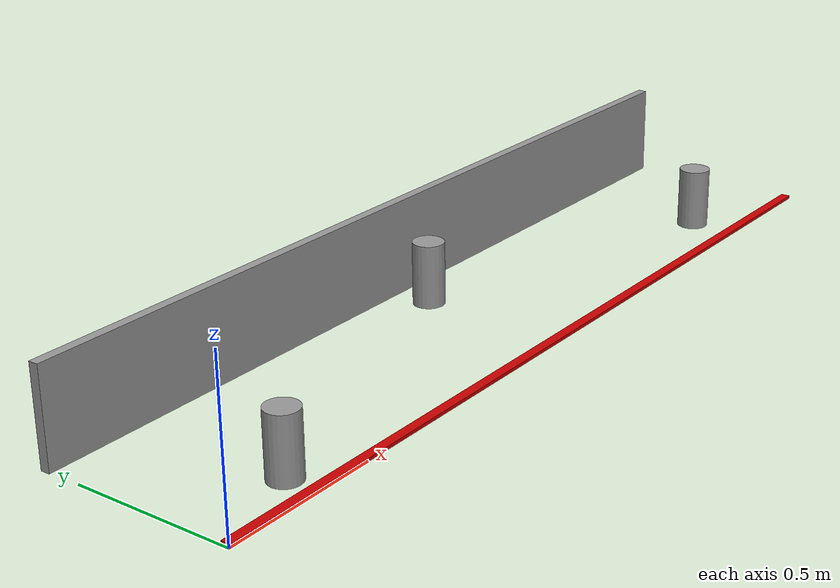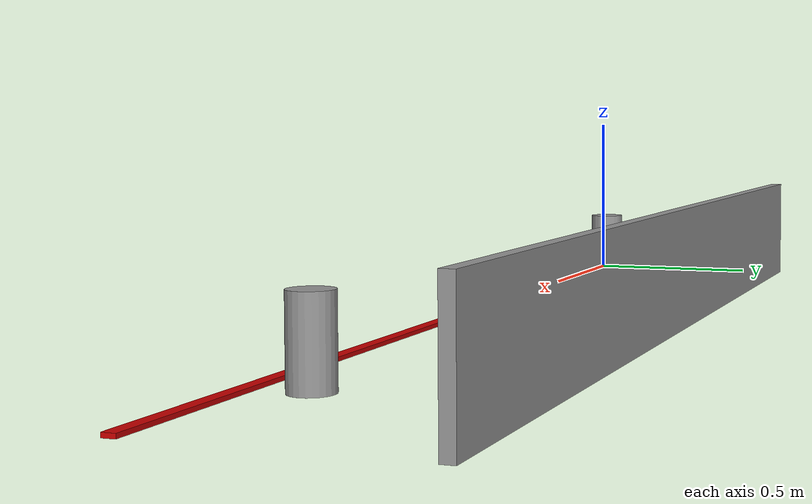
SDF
<?xml version='1.0'?>
<sdf version='1.7'>
  <model name='task1_world'>
    <model name='obstacle'>
      <link name='link_0'>
        <inertial>
          <mass>1</mass>
          <inertia>
            <ixx>0.145833</ixx>
            <ixy>0</ixy>
            <ixz>0</ixz>
            <iyy>0.145833</iyy>
            <iyz>0</iyz>
            <izz>0.125</izz>
          </inertia>
          <pose>0 0 0 0 -0 0</pose>
        </inertial>
        <pose>0 0 0 0 -0 0</pose>
        <gravity>1</gravity>
        <self_collide>0</self_collide>
        <kinematic>0</kinematic>
        <enable_wind>0</enable_wind>
        <visual name='visual'>
          <pose>0 0 0 0 -0 0</pose>
          <geometry>
            <cylinder>
              <radius>0.05</radius>
              <length>0.2</length>
            </cylinder>
          </geometry>
          <material>
            <lighting>1</lighting>
            <script>
              <uri>file://media/materials/scripts/gazebo.material</uri>
              <name>Gazebo/Grey</name>
            </script>
            <shader type='pixel'>
              <normal_map>__default__</normal_map>
            </shader>
            <ambient>0.3 0.3 0.3 1</ambient>
            <diffuse>0.7 0.7 0.7 1</diffuse>
            <specular>0.01 0.01 0.01 1</specular>
            <emissive>0 0 0 1</emissive>
          </material>
          <transparency>0</transparency>
          <cast_shadows>1</cast_shadows>
        </visual>
        <collision name='collision'>
          <laser_retro>0</laser_retro>
          <max_contacts>10</max_contacts>
          <pose>0 0 0 0 -0 0</pose>
          <geometry>
            <cylinder>
              <radius>0.05</radius>
              <length>0.2</length>
            </cylinder>
          </geometry>
          <surface>
            <friction>
              <ode>
                <mu>1</mu>
                <mu2>1</mu2>
                <fdir1>0 0 0</fdir1>
                <slip1>0</slip1>
                <slip2>0</slip2>
              </ode>
              <torsional>
                <coefficient>1</coefficient>
                <patch_radius>0</patch_radius>
                <surface_radius>0</surface_radius>
                <use_patch_radius>1</use_patch_radius>
                <ode>
                  <slip>0</slip>
                </ode>
              </torsional>
            </friction>
            <bounce>
              <restitution_coefficient>0</restitution_coefficient>
              <threshold>1e+06</threshold>
            </bounce>
            <contact>
              <collide_without_contact>0</collide_without_contact>
              <collide_without_contact_bitmask>1</collide_without_contact_bitmask>
              <collide_bitmask>1</collide_bitmask>
              <ode>
                <soft_cfm>0</soft_cfm>
                <soft_erp>0.2</soft_erp>
                <kp>1e+13</kp>
                <kd>1</kd>
                <max_vel>0.01</max_vel>
                <min_depth>0</min_depth>
              </ode>
              <bullet>
                <split_impulse>1</split_impulse>
                <split_impulse_penetration_threshold>-0.01</split_impulse_penetration_threshold>
                <soft_cfm>0</soft_cfm>
                <soft_erp>0.2</soft_erp>
                <kp>1e+13</kp>
                <kd>1</kd>
              </bullet>
            </contact>
          </surface>
        </collision>
      </link>
      <static>0</static>
      <allow_auto_disable>1</allow_auto_disable>
      <pose>0.306525 0.103705 0.103493 0 -0 0</pose>
    </model>
    <model name='obstacle_clone'>
      <link name='link_0'>
        <inertial>
          <mass>1</mass>
          <inertia>
            <ixx>0.145833</ixx>
            <ixy>0</ixy>
            <ixz>0</ixz>
            <iyy>0.145833</iyy>
            <iyz>0</iyz>
            <izz>0.125</izz>
          </inertia>
          <pose>0 0 0 0 -0 0</pose>
        </inertial>
        <pose>0 0 0 0 -0 0</pose>
        <gravity>1</gravity>
        <self_collide>0</self_collide>
        <kinematic>0</kinematic>
        <enable_wind>0</enable_wind>
        <visual name='visual'>
          <pose>0 0 0 0 -0 0</pose>
          <geometry>
            <cylinder>
              <radius>0.05</radius>
              <length>0.2</length>
            </cylinder>
          </geometry>
          <material>
            <lighting>1</lighting>
            <script>
              <uri>file://media/materials/scripts/gazebo.material</uri>
              <name>Gazebo/Grey</name>
            </script>
            <shader type='pixel'>
              <normal_map>__default__</normal_map>
            </shader>
            <ambient>0.3 0.3 0.3 1</ambient>
            <diffuse>0.7 0.7 0.7 1</diffuse>
            <specular>0.01 0.01 0.01 1</specular>
            <emissive>0 0 0 1</emissive>
          </material>
          <transparency>0</transparency>
          <cast_shadows>1</cast_shadows>
        </visual>
        <collision name='collision'>
          <laser_retro>0</laser_retro>
          <max_contacts>10</max_contacts>
          <pose>0 0 0 0 -0 0</pose>
          <geometry>
            <cylinder>
              <radius>0.05</radius>
              <length>0.2</length>
            </cylinder>
          </geometry>
          <surface>
            <friction>
              <ode>
                <mu>1</mu>
                <mu2>1</mu2>
                <fdir1>0 0 0</fdir1>
                <slip1>0</slip1>
                <slip2>0</slip2>
              </ode>
              <torsional>
                <coefficient>1</coefficient>
                <patch_radius>0</patch_radius>
                <surface_radius>0</surface_radius>
                <use_patch_radius>1</use_patch_radius>
                <ode>
                  <slip>0</slip>
                </ode>
              </torsional>
            </friction>
            <bounce>
              <restitution_coefficient>0</restitution_coefficient>
              <threshold>1e+06</threshold>
            </bounce>
            <contact>
              <collide_without_contact>0</collide_without_contact>
              <collide_without_contact_bitmask>1</collide_without_contact_bitmask>
              <collide_bitmask>1</collide_bitmask>
              <ode>
                <soft_cfm>0</soft_cfm>
                <soft_erp>0.2</soft_erp>
                <kp>1e+13</kp>
                <kd>1</kd>
                <max_vel>0.01</max_vel>
                <min_depth>0</min_depth>
              </ode>
              <bullet>
                <split_impulse>1</split_impulse>
                <split_impulse_penetration_threshold>-0.01</split_impulse_penetration_threshold>
                <soft_cfm>0</soft_cfm>
                <soft_erp>0.2</soft_erp>
                <kp>1e+13</kp>
                <kd>1</kd>
              </bullet>
            </contact>
          </surface>
        </collision>
      </link>
      <static>0</static>
      <allow_auto_disable>1</allow_auto_disable>
      <pose>1.37762 0.476787 0.103493 0 -0 0</pose>
    </model>
    <model name='obstacle_clone_0'>
      <link name='link_0'>
        <inertial>
          <mass>1</mass>
          <inertia>
            <ixx>0.145833</ixx>
            <ixy>0</ixy>
            <ixz>0</ixz>
            <iyy>0.145833</iyy>
            <iyz>0</iyz>
            <izz>0.125</izz>
          </inertia>
          <pose>0 0 0 0 -0 0</pose>
        </inertial>
        <pose>0 0 0 0 -0 0</pose>
        <gravity>1</gravity>
        <self_collide>0</self_collide>
        <kinematic>0</kinematic>
        <enable_wind>0</enable_wind>
        <visual name='visual'>
          <pose>0 0 0 0 -0 0</pose>
          <geometry>
            <cylinder>
              <radius>0.05</radius>
              <length>0.2</length>
            </cylinder>
          </geometry>
          <material>
            <lighting>1</lighting>
            <script>
              <uri>file://media/materials/scripts/gazebo.material</uri>
              <name>Gazebo/Grey</name>
            </script>
            <shader type='pixel'>
              <normal_map>__default__</normal_map>
            </shader>
            <ambient>0.3 0.3 0.3 1</ambient>
            <diffuse>0.7 0.7 0.7 1</diffuse>
            <specular>0.01 0.01 0.01 1</specular>
            <emissive>0 0 0 1</emissive>
          </material>
          <transparency>0</transparency>
          <cast_shadows>1</cast_shadows>
        </visual>
        <collision name='collision'>
          <laser_retro>0</laser_retro>
          <max_contacts>10</max_contacts>
          <pose>0 0 0 0 -0 0</pose>
          <geometry>
            <cylinder>
              <radius>0.05</radius>
              <length>0.2</length>
            </cylinder>
          </geometry>
          <surface>
            <friction>
              <ode>
                <mu>1</mu>
                <mu2>1</mu2>
                <fdir1>0 0 0</fdir1>
                <slip1>0</slip1>
                <slip2>0</slip2>
              </ode>
              <torsional>
                <coefficient>1</coefficient>
                <patch_radius>0</patch_radius>
                <surface_radius>0</surface_radius>
                <use_patch_radius>1</use_patch_radius>
                <ode>
                  <slip>0</slip>
                </ode>
              </torsional>
            </friction>
            <bounce>
              <restitution_coefficient>0</restitution_coefficient>
              <threshold>1e+06</threshold>
            </bounce>
            <contact>
              <collide_without_contact>0</collide_without_contact>
              <collide_without_contact_bitmask>1</collide_without_contact_bitmask>
              <collide_bitmask>1</collide_bitmask>
              <ode>
                <soft_cfm>0</soft_cfm>
                <soft_erp>0.2</soft_erp>
                <kp>1e+13</kp>
                <kd>1</kd>
                <max_vel>0.01</max_vel>
                <min_depth>0</min_depth>
              </ode>
              <bullet>
                <split_impulse>1</split_impulse>
                <split_impulse_penetration_threshold>-0.01</split_impulse_penetration_threshold>
                <soft_cfm>0</soft_cfm>
                <soft_erp>0.2</soft_erp>
                <kp>1e+13</kp>
                <kd>1</kd>
              </bullet>
            </contact>
          </surface>
        </collision>
      </link>
      <static>0</static>
      <allow_auto_disable>1</allow_auto_disable>
      <pose>2.44477 0.153189 0.103493 0 -0 0</pose>
    </model>
    <model name='task1_world'>
      <pose>1.43832 0.990672 0 0 -0 0</pose>
      <link name='Wall_0'>
        <collision name='Wall_0_Collision'>
          <geometry>
            <box>
              <size>2.88 0.03 0.3</size>
            </box>
          </geometry>
          <pose>0 0 0.15 0 -0 0</pose>
        </collision>
        <visual name='Wall_0_Visual'>
          <pose>0 0 0.15 0 -0 0</pose>
          <geometry>
            <box>
              <size>2.88 0.03 0.3</size>
            </box>
          </geometry>
          <material>
            <script>
              <uri>file://media/materials/scripts/gazebo.material</uri>
              <name>Gazebo/Grey</name>
            </script>
            <ambient>1 1 1 1</ambient>
          </material>
          <meta>
            <layer>0</layer>
          </meta>
        </visual>
        <pose>-0.005 -0.3775 0 0 -0 3.14159</pose>
      </link>
      <link name='Wall_2'>
        <collision name='Wall_2_Collision'>
          <geometry>
            <box>
              <size>2.88 0.03 0.01</size>
            </box>
          </geometry>
          <pose>0 0 0.005 0 -0 0</pose>
        </collision>
        <visual name='Wall_2_Visual'>
          <pose>0 0 0.005 0 -0 0</pose>
          <geometry>
            <box>
              <size>2.88 0.03 0.01</size>
            </box>
          </geometry>
          <material>
            <script>
              <uri>file://media/materials/scripts/gazebo.material</uri>
              <name>Gazebo/Grey</name>
            </script>
            <ambient>0.8 0 0 1</ambient>
          </material>
          <meta>
            <layer>0</layer>
          </meta>
        </visual>
        <pose>0.005 -0.9775 0 0 -0 0</pose>
      </link>
      <static>1</static>
    </model>
    <static>0</static>
    <allow_auto_disable>1</allow_auto_disable>
  </model>
</sdf>
